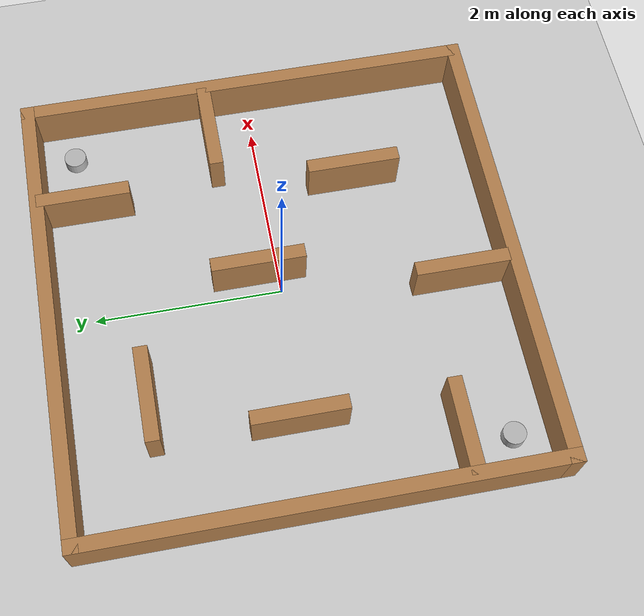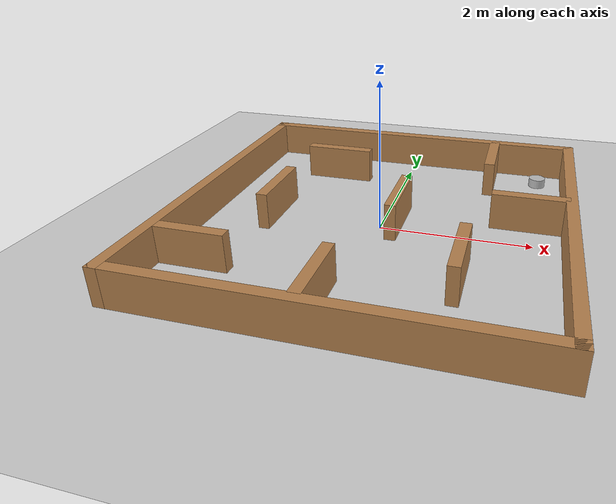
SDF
<?xml version="1.0"?>
<sdf version='1.6'>
  <world name='default'>
    <!-- A global light source -->
    <include>
      <uri>model://sun</uri>
    </include>

    <!-- A ground plane -->
    <include>
      <uri>model://ground_plane</uri>
    </include>

    <physics type="ode">
      <real_time_update_rate>1000.0</real_time_update_rate>
      <max_step_size>0.001</max_step_size>
      <real_time_factor>1</real_time_factor>
      <ode>
        <solver>
          <type>quick</type>
          <iters>150</iters>
          <precon_iters>0</precon_iters>
          <sor>1.400000</sor>
          <use_dynamic_moi_rescaling>1</use_dynamic_moi_rescaling>
        </solver>
        <constraints>
          <cfm>0.00001</cfm>
          <erp>0.2</erp>
          <contact_max_correcting_vel>2000.000000</contact_max_correcting_vel>
          <contact_surface_layer>0.01000</contact_surface_layer>
        </constraints>
      </ode>
    </physics>

    <!-- Load model -->
    <include>
      <uri>model://create_plaza</uri>
    </include>

    <model name="obstacle_1">
      <pose>2 2 0 0 0 0</pose>
      <link name="link">
        <collision name="collision">
          <geometry>
            <cylinder>
              <radius>0.12</radius>
              <length>0.25</length>
            </cylinder>
          </geometry>
          <max_contacts>10</max_contacts>
          <surface>
            <bounce/>
            <friction>
              <ode>
                <mu>10</mu>
                <mu2>10</mu2>
              </ode>
            </friction>
            <contact>
              <ode/>
            </contact>
          </surface>
        </collision>

        <visual name="visual">
          <geometry>
            <cylinder>
              <radius>0.12</radius>
              <length>0.25</length>
            </cylinder>
          </geometry>
        </visual>
      </link>
    </model>

    <model name="obstacle_2">
      <pose>-2 -2 0 0 0 0</pose>
      <link name="link">
        <collision name="collision">
          <geometry>
            <cylinder>
              <radius>0.12</radius>
              <length>0.25</length>
            </cylinder>
          </geometry>
          <max_contacts>10</max_contacts>
          <surface>
            <bounce/>
            <friction>
              <ode>
                <mu>10</mu>
                <mu2>10</mu2>
              </ode>
            </friction>
            <contact>
              <ode/>
            </contact>
          </surface>
        </collision>

        <visual name="visual">
          <geometry>
            <cylinder>
              <radius>0.12</radius>
              <length>0.25</length>
            </cylinder>
          </geometry>
        </visual>
      </link>
    </model>

    <scene>
      <ambient>0.4 0.4 0.4 1</ambient>
      <background>0.7 0.7 0.7 1</background>
      <shadows>true</shadows>
    </scene>

    <gui fullscreen='0'>
      <camera name='user_camera'>
        <pose>0.0 0.0 17.0 0 1.5708 0</pose>
        <view_controller>orbit</view_controller>
      </camera>
    </gui>
  </world>
</sdf>

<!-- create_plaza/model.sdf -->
<sdf version='1.6'>
  <model name='create_plaza'>
    <pose frame=''>0 0 0 0 -0 0</pose>
    <link name='Wall_0'>
      <collision name='Wall_0_Collision'>
        <geometry>
          <box>
            <size>5 0.15 0.5</size>
          </box>
        </geometry>
        <pose frame=''>0 0 0.25 0 -0 0</pose>
      </collision>
      <visual name='Wall_0_Visual'>
        <pose frame=''>0 0 0.25 0 -0 0</pose>
        <geometry>
          <box>
            <size>5 0.15 0.5</size>
          </box>
        </geometry>
        <material>
          <script>
            <uri>file://media/materials/scripts/gazebo.material</uri>
            <name>Gazebo/Wood</name>
          </script>
          <ambient>1 1 1 1</ambient>
        </material>
      </visual>
      <pose frame=''>-2.425 0 0 0 -0 1.5708</pose>
    </link>
    <link name='Wall_11'>
      <collision name='Wall_11_Collision'>
        <geometry>
          <box>
            <size>1 0.15 0.5</size>
          </box>
        </geometry>
        <pose frame=''>0 0 0.25 0 -0 0</pose>
      </collision>
      <visual name='Wall_11_Visual'>
        <pose frame=''>0 0 0.25 0 -0 0</pose>
        <geometry>
          <box>
            <size>1 0.15 0.5</size>
          </box>
        </geometry>
        <material>
          <script>
            <uri>file://media/materials/scripts/gazebo.material</uri>
            <name>Gazebo/Wood</name>
          </script>
          <ambient>1 1 1 1</ambient>
        </material>
      </visual>
      <pose frame=''>-1.937 -1.467 0 0 -0 0</pose>
    </link>
    <link name='Wall_13'>
      <collision name='Wall_13_Collision'>
        <geometry>
          <box>
            <size>1 0.15 0.5</size>
          </box>
        </geometry>
        <pose frame=''>0 0 0.25 0 -0 0</pose>
      </collision>
      <visual name='Wall_13_Visual'>
        <pose frame=''>0 0 0.25 0 -0 0</pose>
        <geometry>
          <box>
            <size>1 0.15 0.5</size>
          </box>
        </geometry>
        <material>
          <script>
            <uri>file://media/materials/scripts/gazebo.material</uri>
            <name>Gazebo/Wood</name>
          </script>
          <ambient>1 1 1 1</ambient>
        </material>
      </visual>
      <pose frame=''>-0.22 -1.866 0 0 0 -1.5708</pose>
    </link>
    <link name='Wall_15'>
      <collision name='Wall_15_Collision'>
        <geometry>
          <box>
            <size>1 0.15 0.5</size>
          </box>
        </geometry>
        <pose frame=''>0 0 0.25 0 -0 0</pose>
      </collision>
      <visual name='Wall_15_Visual'>
        <pose frame=''>0 0 0.25 0 -0 0</pose>
        <geometry>
          <box>
            <size>1 0.15 0.5</size>
          </box>
        </geometry>
        <material>
          <script>
            <uri>file://media/materials/scripts/gazebo.material</uri>
            <name>Gazebo/Wood</name>
          </script>
          <ambient>1 1 1 1</ambient>
        </material>
      </visual>
      <pose frame=''>1.195 -1.002 0 0 -0 1.5708</pose>
    </link>
    <link name='Wall_17'>
      <collision name='Wall_17_Collision'>
        <geometry>
          <box>
            <size>1 0.15 0.5</size>
          </box>
        </geometry>
        <pose frame=''>0 0 0.25 0 -0 0</pose>
      </collision>
      <visual name='Wall_17_Visual'>
        <pose frame=''>0 0 0.25 0 -0 0</pose>
        <geometry>
          <box>
            <size>1 0.15 0.5</size>
          </box>
        </geometry>
        <material>
          <script>
            <uri>file://media/materials/scripts/gazebo.material</uri>
            <name>Gazebo/Wood</name>
          </script>
          <ambient>1 1 1 1</ambient>
        </material>
      </visual>
      <pose frame=''>1.288 1.93 0 0 0 -1.5708</pose>
    </link>
    <link name='Wall_19'>
      <collision name='Wall_19_Collision'>
        <geometry>
          <box>
            <size>1 0.15 0.5</size>
          </box>
        </geometry>
        <pose frame=''>0 0 0.25 0 -0 0</pose>
      </collision>
      <visual name='Wall_19_Visual'>
        <pose frame=''>0 0 0.25 0 -0 0</pose>
        <geometry>
          <box>
            <size>1 0.15 0.5</size>
          </box>
        </geometry>
        <material>
          <script>
            <uri>file://media/materials/scripts/gazebo.material</uri>
            <name>Gazebo/Wood</name>
          </script>
          <ambient>1 1 1 1</ambient>
        </material>
      </visual>
      <pose frame=''>1.91128 0.4632 0 0 -0 0</pose>
    </link>
    <link name='Wall_2'>
      <collision name='Wall_2_Collision'>
        <geometry>
          <box>
            <size>5 0.15 0.5</size>
          </box>
        </geometry>
        <pose frame=''>0 0 0.25 0 -0 0</pose>
      </collision>
      <visual name='Wall_2_Visual'>
        <pose frame=''>0 0 0.25 0 -0 0</pose>
        <geometry>
          <box>
            <size>5 0.15 0.5</size>
          </box>
        </geometry>
        <material>
          <script>
            <uri>file://media/materials/scripts/gazebo.material</uri>
            <name>Gazebo/Wood</name>
          </script>
          <ambient>1 1 1 1</ambient>
        </material>
      </visual>
      <pose frame=''>0 2.425 0 0 -0 0</pose>
    </link>
    <link name='Wall_21'>
      <collision name='Wall_21_Collision'>
        <geometry>
          <box>
            <size>1 0.15 0.5</size>
          </box>
        </geometry>
        <pose frame=''>0 0 0.25 0 -0 0</pose>
      </collision>
      <visual name='Wall_21_Visual'>
        <pose frame=''>0 0 0.25 0 -0 0</pose>
        <geometry>
          <box>
            <size>1 0.15 0.5</size>
          </box>
        </geometry>
        <material>
          <script>
            <uri>file://media/materials/scripts/gazebo.material</uri>
            <name>Gazebo/Wood</name>
          </script>
          <ambient>1 1 1 1</ambient>
        </material>
      </visual>
      <pose frame=''>0.204 0.215 0 0 0 -1.5708</pose>
    </link>
    <link name='Wall_3'>
      <collision name='Wall_3_Collision'>
        <geometry>
          <box>
            <size>5 0.15 0.5</size>
          </box>
        </geometry>
        <pose frame=''>0 0 0.25 0 -0 0</pose>
      </collision>
      <visual name='Wall_3_Visual'>
        <pose frame=''>0 0 0.25 0 -0 0</pose>
        <geometry>
          <box>
            <size>5 0.15 0.5</size>
          </box>
        </geometry>
        <material>
          <script>
            <uri>file://media/materials/scripts/gazebo.material</uri>
            <name>Gazebo/Wood</name>
          </script>
          <ambient>1 1 1 1</ambient>
        </material>
      </visual>
      <pose frame=''>2.425 0 0 0 0 -1.5708</pose>
    </link>
    <link name='Wall_4'>
      <collision name='Wall_4_Collision'>
        <geometry>
          <box>
            <size>5 0.15 0.5</size>
          </box>
        </geometry>
        <pose frame=''>0 0 0.25 0 -0 0</pose>
      </collision>
      <visual name='Wall_4_Visual'>
        <pose frame=''>0 0 0.25 0 -0 0</pose>
        <geometry>
          <box>
            <size>5 0.15 0.5</size>
          </box>
        </geometry>
        <material>
          <script>
            <uri>file://media/materials/scripts/gazebo.material</uri>
            <name>Gazebo/Wood</name>
          </script>
          <ambient>1 1 1 1</ambient>
        </material>
      </visual>
      <pose frame=''>0 -2.425 0 0 -0 3.14159</pose>
    </link>
    <link name='Wall_7'>
      <collision name='Wall_7_Collision'>
        <geometry>
          <box>
            <size>1 0.15 0.5</size>
          </box>
        </geometry>
        <pose frame=''>0 0 0.25 0 -0 0</pose>
      </collision>
      <visual name='Wall_7_Visual'>
        <pose frame=''>0 0 0.25 0 -0 0</pose>
        <geometry>
          <box>
            <size>1 0.15 0.5</size>
          </box>
        </geometry>
        <material>
          <script>
            <uri>file://media/materials/scripts/gazebo.material</uri>
            <name>Gazebo/Wood</name>
          </script>
          <ambient>1 1 1 1</ambient>
        </material>
      </visual>
      <pose frame=''>-1.064 1.548 0 0 -0 0</pose>
    </link>
    <link name='Wall_9'>
      <collision name='Wall_9_Collision'>
        <geometry>
          <box>
            <size>1 0.15 0.5</size>
          </box>
        </geometry>
        <pose frame=''>0 0 0.25 0 -0 0</pose>
      </collision>
      <visual name='Wall_9_Visual'>
        <pose frame=''>0 0 0.25 0 -0 0</pose>
        <geometry>
          <box>
            <size>1 0.15 0.5</size>
          </box>
        </geometry>
        <material>
          <script>
            <uri>file://media/materials/scripts/gazebo.material</uri>
            <name>Gazebo/Wood</name>
          </script>
          <ambient>1 1 1 1</ambient>
        </material>
      </visual>
      <pose frame=''>-1.502 0.092 0 0 0 -1.5708</pose>
    </link>
    <static>1</static>
  </model>
</sdf>
